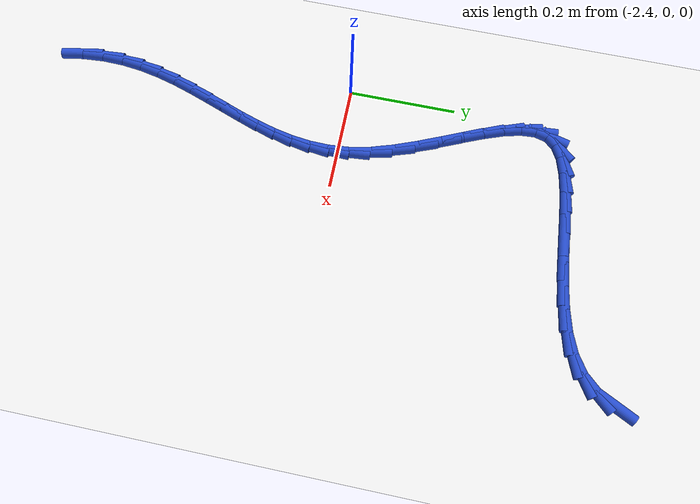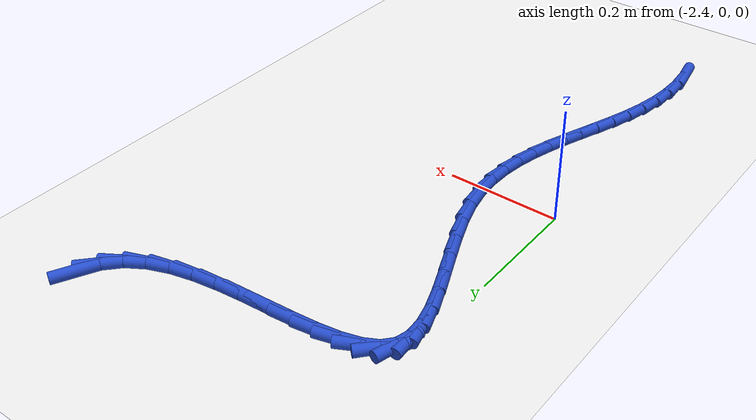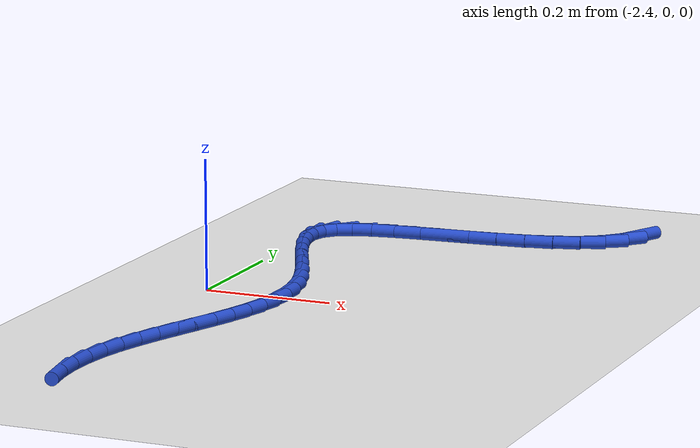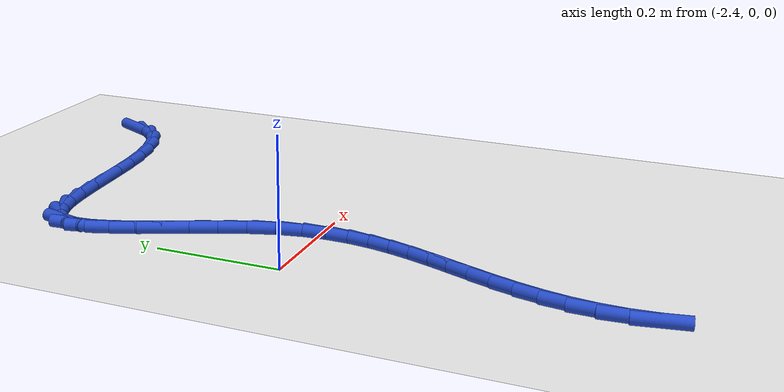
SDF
<sdf version="1.6">
 <world name="default">
  <model name="ground_plane">
   <static>1</static>
   <link name="link">
    <collision name="collision">
     <geometry><plane><normal>0 0 1</normal><size>100 100</size></plane></geometry>
     <surface><friction><ode><mu>100</mu><mu2>50</mu2></ode></friction></surface>
    </collision>
    <visual name="visual">
     <cast_shadows>0</cast_shadows>
     <geometry><plane><normal>0 0 1</normal><size>100 100</size></plane></geometry>
     <material>
      <script><uri>file://media/materials/scripts/gazebo.material</uri><name>Gazebo/WhiteGlow</name></script>
     </material>
    </visual>
   </link>
  </model>
  <model name="line">
   <link name="link_104">
    <pose>-1.906247948461183 0.5440031522688734 0.01 0 1.57 1.1071111418059238</pose>
    <collision name="collision">
     <geometry><cylinder><radius>0.01</radius><length>0.08</length></cylinder></geometry>
    </collision>
    <visual name="visual">
     <material>
      <script><name>Gazebo/Blue</name><uri>file://media/materials/scripts/gazebo.material</uri></script>
     </material>
     <geometry><cylinder><radius>0.01</radius><length>0.08</length></cylinder></geometry>
    </visual>
   </link>
   <link name="link_105">
    <pose>-1.9221880244119403 0.512125994962837 0.01 0 1.57 0.8163183993536995</pose>
    <collision name="collision">
     <geometry><cylinder><radius>0.01</radius><length>0.08</length></cylinder></geometry>
    </collision>
    <visual name="visual">
     <material>
      <script><name>Gazebo/Blue</name><uri>file://media/materials/scripts/gazebo.material</uri></script>
     </material>
     <geometry><cylinder><radius>0.01</radius><length>0.08</length></cylinder></geometry>
    </visual>
   </link>
   <link name="link_106">
    <pose>-1.9459433104187283 0.4868542998406462 0.01 0 1.57 0.5540029706102401</pose>
    <collision name="collision">
     <geometry><cylinder><radius>0.01</radius><length>0.08</length></cylinder></geometry>
    </collision>
    <visual name="visual">
     <material>
      <script><name>Gazebo/Blue</name><uri>file://media/materials/scripts/gazebo.material</uri></script>
     </material>
     <geometry><cylinder><radius>0.01</radius><length>0.08</length></cylinder></geometry>
    </visual>
   </link>
   <link name="link_107">
    <pose>-1.976781631021943 0.4677768983464276 0.01 0 1.57 0.3635331916923943</pose>
    <collision name="collision">
     <geometry><cylinder><radius>0.01</radius><length>0.08</length></cylinder></geometry>
    </collision>
    <visual name="visual">
     <material>
      <script><name>Gazebo/Blue</name><uri>file://media/materials/scripts/gazebo.material</uri></script>
     </material>
     <geometry><cylinder><radius>0.01</radius><length>0.08</length></cylinder></geometry>
    </visual>
   </link>
   <link name="link_108">
    <pose>-2.013287665598176 0.4538884691284946 0.01 0 1.57 0.23383358090763828</pose>
    <collision name="collision">
     <geometry><cylinder><radius>0.01</radius><length>0.08</length></cylinder></geometry>
    </collision>
    <visual name="visual">
     <material>
      <script><name>Gazebo/Blue</name><uri>file://media/materials/scripts/gazebo.material</uri></script>
     </material>
     <geometry><cylinder><radius>0.01</radius><length>0.08</length></cylinder></geometry>
    </visual>
   </link>
   <link name="link_109">
    <pose>-2.0540429319022513 0.44418094107345346 0.01 0 1.57 0.14881804646044908</pose>
    <collision name="collision">
     <geometry><cylinder><radius>0.01</radius><length>0.08</length></cylinder></geometry>
    </collision>
    <visual name="visual">
     <material>
      <script><name>Gazebo/Blue</name><uri>file://media/materials/scripts/gazebo.material</uri></script>
     </material>
     <geometry><cylinder><radius>0.01</radius><length>0.08</length></cylinder></geometry>
    </visual>
   </link>
   <link name="link_110">
    <pose>-2.097628947688992 0.43764624306790967 0.01 0 1.57 0.09680988529718042</pose>
    <collision name="collision">
     <geometry><cylinder><radius>0.01</radius><length>0.08</length></cylinder></geometry>
    </collision>
    <visual name="visual">
     <material>
      <script><name>Gazebo/Blue</name><uri>file://media/materials/scripts/gazebo.material</uri></script>
     </material>
     <geometry><cylinder><radius>0.01</radius><length>0.08</length></cylinder></geometry>
    </visual>
   </link>
   <link name="link_111">
    <pose>-2.142627230713223 0.43327630399846917 0.01 0 1.57 0.07129711801621483</pose>
    <collision name="collision">
     <geometry><cylinder><radius>0.01</radius><length>0.08</length></cylinder></geometry>
    </collision>
    <visual name="visual">
     <material>
      <script><name>Gazebo/Blue</name><uri>file://media/materials/scripts/gazebo.material</uri></script>
     </material>
     <geometry><cylinder><radius>0.01</radius><length>0.08</length></cylinder></geometry>
    </visual>
   </link>
   <link name="link_112">
    <pose>-2.187619298729767 0.4300630527517375 0.01 0 1.57 0.0702267494099422</pose>
    <collision name="collision">
     <geometry><cylinder><radius>0.01</radius><length>0.08</length></cylinder></geometry>
    </collision>
    <visual name="visual">
     <material>
      <script><name>Gazebo/Blue</name><uri>file://media/materials/scripts/gazebo.material</uri></script>
     </material>
     <geometry><cylinder><radius>0.01</radius><length>0.08</length></cylinder></geometry>
    </visual>
   </link>
   <link name="link_113">
    <pose>-2.2311866694934497 0.4269984182143209 0.01 0 1.57 0.09606111828308192</pose>
    <collision name="collision">
     <geometry><cylinder><radius>0.01</radius><length>0.08</length></cylinder></geometry>
    </collision>
    <visual name="visual">
     <material>
      <script><name>Gazebo/Blue</name><uri>file://media/materials/scripts/gazebo.material</uri></script>
     </material>
     <geometry><cylinder><radius>0.01</radius><length>0.08</length></cylinder></geometry>
    </visual>
   </link>
   <link name="link_114">
    <pose>-2.271910860759093 0.42307432927282485 0.01 0 1.57 0.1575215053730125</pose>
    <collision name="collision">
     <geometry><cylinder><radius>0.01</radius><length>0.08</length></cylinder></geometry>
    </collision>
    <visual name="visual">
     <material>
      <script><name>Gazebo/Blue</name><uri>file://media/materials/scripts/gazebo.material</uri></script>
     </material>
     <geometry><cylinder><radius>0.01</radius><length>0.08</length></cylinder></geometry>
    </visual>
   </link>
   <link name="link_115">
    <pose>-2.308373390281522 0.41728271481385504 0.01 0 1.57 0.2744583947340577</pose>
    <collision name="collision">
     <geometry><cylinder><radius>0.01</radius><length>0.08</length></cylinder></geometry>
    </collision>
    <visual name="visual">
     <material>
      <script><name>Gazebo/Blue</name><uri>file://media/materials/scripts/gazebo.material</uri></script>
     </material>
     <geometry><cylinder><radius>0.01</radius><length>0.08</length></cylinder></geometry>
    </visual>
   </link>
   <link name="link_116">
    <pose>-2.339155775815561 0.4086155037240177 0.01 0 1.57 0.4873086846981499</pose>
    <collision name="collision">
     <geometry><cylinder><radius>0.01</radius><length>0.08</length></cylinder></geometry>
    </collision>
    <visual name="visual">
     <material>
      <script><name>Gazebo/Blue</name><uri>file://media/materials/scripts/gazebo.material</uri></script>
     </material>
     <geometry><cylinder><radius>0.01</radius><length>0.08</length></cylinder></geometry>
    </visual>
   </link>
   <link name="link_117">
    <pose>-2.3628395351160325 0.3960646248899185 0.01 0 1.57 0.8550345810411962</pose>
    <collision name="collision">
     <geometry><cylinder><radius>0.01</radius><length>0.08</length></cylinder></geometry>
    </collision>
    <visual name="visual">
     <material>
      <script><name>Gazebo/Blue</name><uri>file://media/materials/scripts/gazebo.material</uri></script>
     </material>
     <geometry><cylinder><radius>0.01</radius><length>0.08</length></cylinder></geometry>
    </visual>
   </link>
   <link name="link_118">
    <pose>-2.378007110371618 0.37862255291147734 0.01 0 1.57 1.317180047556617</pose>
    <collision name="collision">
     <geometry><cylinder><radius>0.01</radius><length>0.08</length></cylinder></geometry>
    </collision>
    <visual name="visual">
     <material>
      <script><name>Gazebo/Blue</name><uri>file://media/materials/scripts/gazebo.material</uri></script>
     </material>
     <geometry><cylinder><radius>0.01</radius><length>0.08</length></cylinder></geometry>
    </visual>
   </link>
   <link name="link_119">
    <pose>-2.383948693517992 0.3556995623831063 0.01 0 1.57 -1.498178267028666</pose>
    <collision name="collision">
     <geometry><cylinder><radius>0.01</radius><length>0.08</length></cylinder></geometry>
    </collision>
    <visual name="visual">
     <material>
      <script><name>Gazebo/Blue</name><uri>file://media/materials/scripts/gazebo.material</uri></script>
     </material>
     <geometry><cylinder><radius>0.01</radius><length>0.08</length></cylinder></geometry>
    </visual>
   </link>
   <link name="link_120">
    <pose>-2.3819241060822467 0.3278686428785434 0.01 0 1.57 -1.314083168179212</pose>
    <collision name="collision">
     <geometry><cylinder><radius>0.01</radius><length>0.08</length></cylinder></geometry>
    </collision>
    <visual name="visual">
     <material>
      <script><name>Gazebo/Blue</name><uri>file://media/materials/scripts/gazebo.material</uri></script>
     </material>
     <geometry><cylinder><radius>0.01</radius><length>0.08</length></cylinder></geometry>
    </visual>
   </link>
   <link name="link_121">
    <pose>-2.3735330746443535 0.29590343728129337 0.01 0 1.57 -1.2142473228158717</pose>
    <collision name="collision">
     <geometry><cylinder><radius>0.01</radius><length>0.08</length></cylinder></geometry>
    </collision>
    <visual name="visual">
     <material>
      <script><name>Gazebo/Blue</name><uri>file://media/materials/scripts/gazebo.material</uri></script>
     </material>
     <geometry><cylinder><radius>0.01</radius><length>0.08</length></cylinder></geometry>
    </visual>
   </link>
   <link name="link_122">
    <pose>-2.360375325784283 0.2605775884748608 0.01 0 1.57 -1.1642038695459545</pose>
    <collision name="collision">
     <geometry><cylinder><radius>0.01</radius><length>0.08</length></cylinder></geometry>
    </collision>
    <visual name="visual">
     <material>
      <script><name>Gazebo/Blue</name><uri>file://media/materials/scripts/gazebo.material</uri></script>
     </material>
     <geometry><cylinder><radius>0.01</radius><length>0.08</length></cylinder></geometry>
    </visual>
   </link>
   <link name="link_123">
    <pose>-2.3440505860820102 0.22266473934275088 0.01 0 1.57 -1.1476240296491211</pose>
    <collision name="collision">
     <geometry><cylinder><radius>0.01</radius><length>0.08</length></cylinder></geometry>
    </collision>
    <visual name="visual">
     <material>
      <script><name>Gazebo/Blue</name><uri>file://media/materials/scripts/gazebo.material</uri></script>
     </material>
     <geometry><cylinder><radius>0.01</radius><length>0.08</length></cylinder></geometry>
    </visual>
   </link>
   <link name="link_124">
    <pose>-2.3261585821175053 0.18293853276846828 0.01 0 1.57 -1.157882562523734</pose>
    <collision name="collision">
     <geometry><cylinder><radius>0.01</radius><length>0.08</length></cylinder></geometry>
    </collision>
    <visual name="visual">
     <material>
      <script><name>Gazebo/Blue</name><uri>file://media/materials/scripts/gazebo.material</uri></script>
     </material>
     <geometry><cylinder><radius>0.01</radius><length>0.08</length></cylinder></geometry>
    </visual>
   </link>
   <link name="link_125">
    <pose>-2.3082990404707395 0.14217261163551684 0.01 0 1.57 -1.1941921379037814</pose>
    <collision name="collision">
     <geometry><cylinder><radius>0.01</radius><length>0.08</length></cylinder></geometry>
    </collision>
    <visual name="visual">
     <material>
      <script><name>Gazebo/Blue</name><uri>file://media/materials/scripts/gazebo.material</uri></script>
     </material>
     <geometry><cylinder><radius>0.01</radius><length>0.08</length></cylinder></geometry>
    </visual>
   </link>
   <link name="link_126">
    <pose>-2.2920716877216876 0.10114061882740374 0.01 0 1.57 -1.260475196819359</pose>
    <collision name="collision">
     <geometry><cylinder><radius>0.01</radius><length>0.08</length></cylinder></geometry>
    </collision>
    <visual name="visual">
     <material>
      <script><name>Gazebo/Blue</name><uri>file://media/materials/scripts/gazebo.material</uri></script>
     </material>
     <geometry><cylinder><radius>0.01</radius><length>0.08</length></cylinder></geometry>
    </visual>
   </link>
   <link name="link_127">
    <pose>-2.2790762504503195 0.060616197227632646 0.01 0 1.57 -1.3634010536328391</pose>
    <collision name="collision">
     <geometry><cylinder><radius>0.01</radius><length>0.08</length></cylinder></geometry>
    </collision>
    <visual name="visual">
     <material>
      <script><name>Gazebo/Blue</name><uri>file://media/materials/scripts/gazebo.material</uri></script>
     </material>
     <geometry><cylinder><radius>0.01</radius><length>0.08</length></cylinder></geometry>
    </visual>
   </link>
   <link name="link_128">
    <pose>-2.270809069577956 0.021327413411081398 0.01 0 1.57 -1.483377450908236</pose>
    <collision name="collision">
     <geometry><cylinder><radius>0.01</radius><length>0.08</length></cylinder></geometry>
    </collision>
    <visual name="visual">
     <material>
      <script><name>Gazebo/Blue</name><uri>file://media/materials/scripts/gazebo.material</uri></script>
     </material>
     <geometry><cylinder><radius>0.01</radius><length>0.08</length></cylinder></geometry>
    </visual>
   </link>
   <link name="link_129">
    <pose>-2.2674884370814357 -0.01656107836096885 0.01 0 1.57 1.544048474088451</pose>
    <collision name="collision">
     <geometry><cylinder><radius>0.01</radius><length>0.08</length></cylinder></geometry>
    </collision>
    <visual name="visual">
     <material>
      <script><name>Gazebo/Blue</name><uri>file://media/materials/scripts/gazebo.material</uri></script>
     </material>
     <geometry><cylinder><radius>0.01</radius><length>0.08</length></cylinder></geometry>
    </visual>
   </link>
   <link name="link_130">
    <pose>-2.2684704150744954 -0.05326472736249004 0.01 0 1.57 1.4421236820645063</pose>
    <collision name="collision">
     <geometry><cylinder><radius>0.01</radius><length>0.08</length></cylinder></geometry>
    </collision>
    <visual name="visual">
     <material>
      <script><name>Gazebo/Blue</name><uri>file://media/materials/scripts/gazebo.material</uri></script>
     </material>
     <geometry><cylinder><radius>0.01</radius><length>0.08</length></cylinder></geometry>
    </visual>
   </link>
   <link name="link_131">
    <pose>-2.2730949032559473 -0.08900610787125403 0.01 0 1.57 1.3567946842317038</pose>
    <collision name="collision">
     <geometry><cylinder><radius>0.01</radius><length>0.08</length></cylinder></geometry>
    </collision>
    <visual name="visual">
     <material>
      <script><name>Gazebo/Blue</name><uri>file://media/materials/scripts/gazebo.material</uri></script>
     </material>
     <geometry><cylinder><radius>0.01</radius><length>0.08</length></cylinder></geometry>
    </visual>
   </link>
   <link name="link_132">
    <pose>-2.2807018013246028 -0.12400779416503369 0.01 0 1.57 1.2904475985377144</pose>
    <collision name="collision">
     <geometry><cylinder><radius>0.01</radius><length>0.08</length></cylinder></geometry>
    </collision>
    <visual name="visual">
     <material>
      <script><name>Gazebo/Blue</name><uri>file://media/materials/scripts/gazebo.material</uri></script>
     </material>
     <geometry><cylinder><radius>0.01</radius><length>0.08</length></cylinder></geometry>
    </visual>
   </link>
   <link name="link_133">
    <pose>-2.2906310089792736 -0.15849236052159893 0.01 0 1.57 1.243928240406238</pose>
    <collision name="collision">
     <geometry><cylinder><radius>0.01</radius><length>0.08</length></cylinder></geometry>
    </collision>
    <visual name="visual">
     <material>
      <script><name>Gazebo/Blue</name><uri>file://media/materials/scripts/gazebo.material</uri></script>
     </material>
     <geometry><cylinder><radius>0.01</radius><length>0.08</length></cylinder></geometry>
    </visual>
   </link>
   <link name="link_134">
    <pose>-2.30222242591877 -0.19268238121872255 0.01 0 1.57 1.2171939770823847</pose>
    <collision name="collision">
     <geometry><cylinder><radius>0.01</radius><length>0.08</length></cylinder></geometry>
    </collision>
    <visual name="visual">
     <material>
      <script><name>Gazebo/Blue</name><uri>file://media/materials/scripts/gazebo.material</uri></script>
     </material>
     <geometry><cylinder><radius>0.01</radius><length>0.08</length></cylinder></geometry>
    </visual>
   </link>
   <link name="link_135">
    <pose>-2.3148159518419056 -0.22680043053417653 0.01 0 1.57 1.2098581967706217</pose>
    <collision name="collision">
     <geometry><cylinder><radius>0.01</radius><length>0.08</length></cylinder></geometry>
    </collision>
    <visual name="visual">
     <material>
      <script><name>Gazebo/Blue</name><uri>file://media/materials/scripts/gazebo.material</uri></script>
     </material>
     <geometry><cylinder><radius>0.01</radius><length>0.08</length></cylinder></geometry>
    </visual>
   </link>
   <link name="link_136">
    <pose>-2.327751486447493 -0.26106908274573276 0.01 0 1.57 1.2215049530214952</pose>
    <collision name="collision">
     <geometry><cylinder><radius>0.01</radius><length>0.08</length></cylinder></geometry>
    </collision>
    <visual name="visual">
     <material>
      <script><name>Gazebo/Blue</name><uri>file://media/materials/scripts/gazebo.material</uri></script>
     </material>
     <geometry><cylinder><radius>0.01</radius><length>0.08</length></cylinder></geometry>
    </visual>
   </link>
   <link name="link_137">
    <pose>-2.3403689294343404 -0.2957109121311629 0.01 0 1.57 1.251771135936648</pose>
    <collision name="collision">
     <geometry><cylinder><radius>0.01</radius><length>0.08</length></cylinder></geometry>
    </collision>
    <visual name="visual">
     <material>
      <script><name>Gazebo/Blue</name><uri>file://media/materials/scripts/gazebo.material</uri></script>
     </material>
     <geometry><cylinder><radius>0.01</radius><length>0.08</length></cylinder></geometry>
    </visual>
   </link>
   <link name="link_138">
    <pose>-2.3520081805012634 -0.3309484929682392 0.01 0 1.57 1.3002246830747601</pose>
    <collision name="collision">
     <geometry><cylinder><radius>0.01</radius><length>0.08</length></cylinder></geometry>
    </collision>
    <visual name="visual">
     <material>
      <script><name>Gazebo/Blue</name><uri>file://media/materials/scripts/gazebo.material</uri></script>
     </material>
     <geometry><cylinder><radius>0.01</radius><length>0.08</length></cylinder></geometry>
    </visual>
   </link>
   <link name="link_139">
    <pose>-2.3620091393470704 -0.36700439953473313 0.01 0 1.57 1.3660710676218646</pose>
    <collision name="collision">
     <geometry><cylinder><radius>0.01</radius><length>0.08</length></cylinder></geometry>
    </collision>
    <visual name="visual">
     <material>
      <script><name>Gazebo/Blue</name><uri>file://media/materials/scripts/gazebo.material</uri></script>
     </material>
     <geometry><cylinder><radius>0.01</radius><length>0.08</length></cylinder></geometry>
    </visual>
   </link>
   <link name="link_140">
    <pose>-2.369711705670575 -0.4041012061084177 0.01 0 1.57 1.4477496062907425</pose>
    <collision name="collision">
     <geometry><cylinder><radius>0.01</radius><length>0.08</length></cylinder></geometry>
    </collision>
    <visual name="visual">
     <material>
      <script><name>Gazebo/Blue</name><uri>file://media/materials/scripts/gazebo.material</uri></script>
     </material>
     <geometry><cylinder><radius>0.01</radius><length>0.08</length></cylinder></geometry>
    </visual>
   </link>
   <link name="link_141">
    <pose>-2.374455779170589 -0.442461486967063 0.01 0 1.57 1.5425583126905082</pose>
    <collision name="collision">
     <geometry><cylinder><radius>0.01</radius><length>0.08</length></cylinder></geometry>
    </collision>
    <visual name="visual">
     <material>
      <script><name>Gazebo/Blue</name><uri>file://media/materials/scripts/gazebo.material</uri></script>
     </material>
     <geometry><cylinder><radius>0.01</radius><length>0.08</length></cylinder></geometry>
    </visual>
   </link>
   <link name="link_142">
    <pose>-2.3755812595459234 -0.4823078163884417 0.01 0 1.57 -1.4953378729225963</pose>
    <collision name="collision">
     <geometry><cylinder><radius>0.01</radius><length>0.08</length></cylinder></geometry>
    </collision>
    <visual name="visual">
     <material>
      <script><name>Gazebo/Blue</name><uri>file://media/materials/scripts/gazebo.material</uri></script>
     </material>
     <geometry><cylinder><radius>0.01</radius><length>0.08</length></cylinder></geometry>
    </visual>
   </link>
   <link name="link_143">
    <pose>-2.37244071243183 -0.5238483456950556 0.01 0 1.57 -1.395067732231805</pose>
    <collision name="collision">
     <geometry><cylinder><radius>0.01</radius><length>0.08</length></cylinder></geometry>
    </collision>
    <visual name="visual">
     <material>
      <script><name>Gazebo/Blue</name><uri>file://media/materials/scripts/gazebo.material</uri></script>
     </material>
     <geometry><cylinder><radius>0.01</radius><length>0.08</length></cylinder></geometry>
    </visual>
   </link>
  </model>
 </world>
</sdf>
